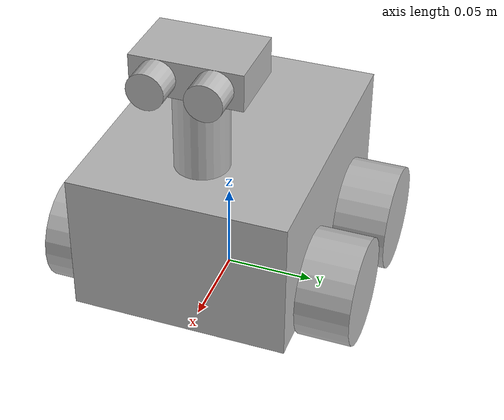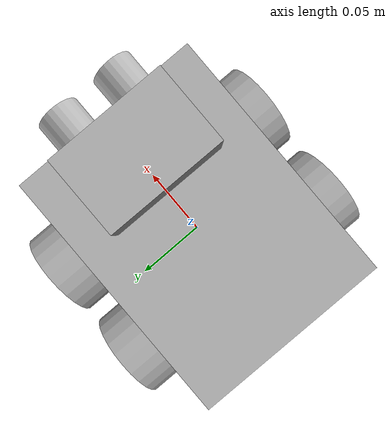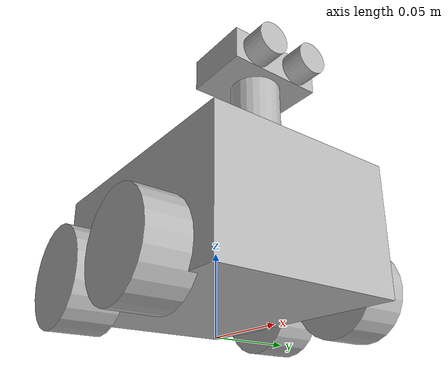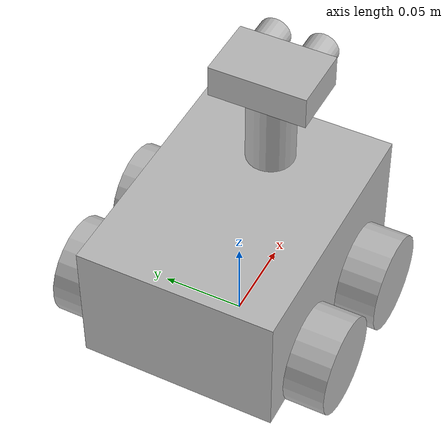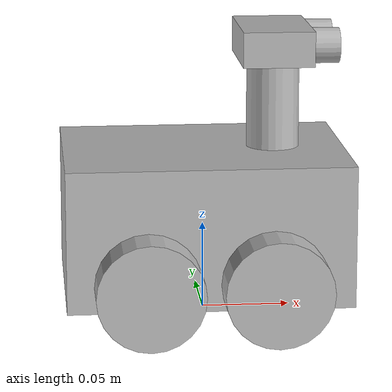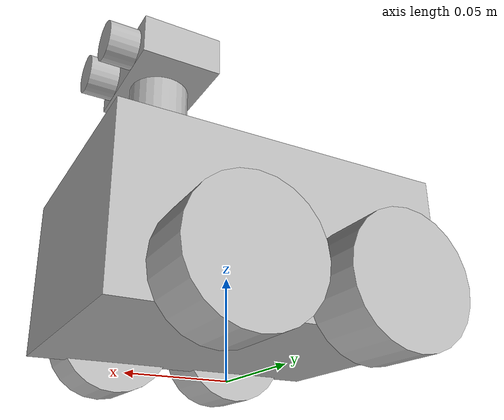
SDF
<?xml version="1.0"?>
<sdf version="1.6">
  <model name="minimapper">

    <!-- Body of the MM -->
    <link name="body">

      <pose>0 0 0.055 0 0 0</pose>
      <inertial>
        <mass>0.6</mass>
        <inertia>
          <ixx>0.00104</ixx>
          <iyy>0.00160</iyy>
          <izz>0.00200</izz>
          <ixy>0</ixy>
          <iyz>0</iyz>
          <ixz>0</ixz>
        </inertia>
      </inertial>

      <collision name="body_collision">
        <geometry>
          <box><size>0.16 0.12 0.08</size></box>
        </geometry>
      </collision>

      <visual name="body_visual">
        <geometry>
          <box><size>0.16 0.12 0.08</size></box>
        </geometry>
      </visual>
    </link>

    <!-- Front Right Wheel of the MM and joint. -->
    <link name="wheel_fr">
      <pose>0.035 0.075 0.03 1.5708 0 0</pose>
      <inertial>
        <mass>0.5</mass>
        <inertia>
          <ixx>0.000150</ixx>
          <iyy>0.000150</iyy>
          <izz>0.000225</izz>
          <ixy>0</ixy>
          <iyz>0</iyz>
          <ixz>0</ixz>
        </inertia>
      </inertial>
      <collision name="wheel_fr_collision">
        <geometry>
          <cylinder>
            <radius>0.03</radius>
            <length>0.03</length>
          </cylinder>
        </geometry>
      </collision>
      <visual name="wheel_fr_visual">
        <geometry>
          <cylinder>
            <radius>0.03</radius>
            <length>0.03</length>
          </cylinder>
        </geometry>
      </visual>
    </link>

    <joint name="wheel_fr_joint" type="revolute">
      <parent>body</parent>
      <child>wheel_fr</child>
      <axis>
        <xyz>0 0 1</xyz>
        <use_parent_model_frame>0</use_parent_model_frame>
      </axis>
    </joint>

    <!-- Front Left Wheel of the MM and joint. -->
    <link name="wheel_fl">
      <pose>0.035 -0.07 0.03 1.5708 0 0</pose>
      <inertial>
        <mass>0.5</mass>
        <inertia>
          <ixx>0.000150</ixx>
          <iyy>0.000150</iyy>
          <izz>0.000225</izz>
          <ixy>0</ixy>
          <iyz>0</iyz>
          <ixz>0</ixz>
        </inertia>
      </inertial>
      <collision name="wheel_fl_collision">
        <geometry>
          <cylinder>
            <radius>0.03</radius>
            <length>0.03</length>
          </cylinder>
        </geometry>
      </collision>
      <visual name="wheel_fl_visual">
        <geometry>
          <cylinder>
            <radius>0.03</radius>
            <length>0.03</length>
          </cylinder>
        </geometry>
      </visual>
    </link>

    <joint name="wheel_fl_joint" type="revolute">
      <parent>body</parent>
      <child>wheel_fl</child>
      <axis>
        <xyz>0 0 1</xyz>
        <use_parent_model_frame>0</use_parent_model_frame>
      </axis>
    </joint>

    <!-- Rear Right Wheel of the MM and joint. -->
    <link name="wheel_rr">
      <pose>-0.035 0.075 0.03 1.5708 0 0</pose>
      <inertial>
        <mass>0.5</mass>
        <inertia>
          <ixx>0.000150</ixx>
          <iyy>0.000150</iyy>
          <izz>0.000225</izz>
          <ixy>0</ixy>
          <iyz>0</iyz>
          <ixz>0</ixz>
        </inertia>
      </inertial>
      <collision name="wheel_rr_collision">
        <geometry>
          <cylinder>
            <radius>0.03</radius>
            <length>0.03</length>
          </cylinder>
        </geometry>
      </collision>
      <visual name="wheel_rr_visual">
        <geometry>
          <cylinder>
            <radius>0.03</radius>
            <length>0.03</length>
          </cylinder>
        </geometry>
      </visual>
    </link>

    <joint name="wheel_rr_joint" type="revolute">
      <parent>body</parent>
      <child>wheel_rr</child>
      <axis>
        <xyz>0 0 1</xyz>
        <use_parent_model_frame>0</use_parent_model_frame>
      </axis>
    </joint>

    <!-- Rear Left Wheel of the MM and joint. -->
    <link name="wheel_rl">
      <pose>-0.035 -0.07 0.03 1.5708 0 0</pose>
      <inertial>
        <mass>0.5</mass>
        <inertia>
          <ixx>0.000150</ixx>
          <iyy>0.000150</iyy>
          <izz>0.000225</izz>
          <ixy>0</ixy>
          <iyz>0</iyz>
          <ixz>0</ixz>
        </inertia>
      </inertial>
      <collision name="wheel_rl_collision">
        <geometry>
          <cylinder>
            <radius>0.03</radius>
            <length>0.03</length>
          </cylinder>
        </geometry>
      </collision>
      <visual name="wheel_rl_visual">
        <geometry>
          <cylinder>
            <radius>0.03</radius>
            <length>0.03</length>
          </cylinder>
        </geometry>
      </visual>
    </link>

    <joint name="wheel_rl_joint" type="revolute">
      <parent>body</parent>
      <child>wheel_rl</child>
      <axis>
        <xyz>0 0 1</xyz>
        <use_parent_model_frame>0</use_parent_model_frame>
      </axis>
    </joint>

  <!-- Ultrasonic Radar -->
  <include>
    <uri>model://sonar</uri>
    <pose>0.04 0 0.095 0 0 0</pose>
    <plugin name="sonar_control" filename="sonar.so">
      <velocity>0.5</velocity>
      <pid>
        <p>0.005</p>
        <i>0</i>
        <d>0</d>
      </pid>
    </plugin>
  </include>

  <joint name="sonar_joint" type="fixed">
    <pose>0.04 0 0.095 0 0 0</pose>
    <parent>body</parent>
    <child>sonar::shaft</child>
  </joint>

  </model>
</sdf>

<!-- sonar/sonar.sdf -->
<sdf version="1.6">
  <model name="sonar">

    <!-- The Shaft of the Sonar. -->
    <link name="shaft">

      <pose>0 0 0.025 0 0 0</pose>
      <inertial>
        <mass>0.1</mass>
        <inertia>
          <ixx>0.00002646</ixx>
          <iyy>0.00002646</iyy>
          <izz>0.00001125</izz>
          <ixy>0</ixy>
          <iyz>0</iyz>
          <ixz>0</ixz>
        </inertia>
      </inertial>

      <collision name="shaft_collision">
        <geometry>
          <cylinder>
            <radius>0.015</radius>
            <length>0.050</length>
          </cylinder>
        </geometry>
      </collision>

      <visual name="shaft_visual">
        <geometry>
          <cylinder>
            <radius>0.015</radius>
            <length>0.050</length>
          </cylinder>
        </geometry>
      </visual>
    </link>

    <!-- The Head of the Sonar. -->
    <link name="head">

      <pose>0 0 0.060 0 0 0</pose>
      <inertial>
        <mass>0.1</mass>
        <inertia>
          <ixx>0.00003333</ixx>
          <iyy>0.00001667</iyy>
          <izz>0.00004333</izz>
          <ixy>0</ixy>
          <iyz>0</iyz>
          <ixz>0</ixz>
        </inertia>
      </inertial>

      <collision name="head_collision">
        <geometry>
          <box><size>0.04 0.06 0.02</size></box>
        </geometry>
      </collision>

      <visual name="head_visual">
        <geometry>
          <box><size>0.04 0.06 0.02</size></box>
        </geometry>
      </visual>
    </link>

    <!-- Joint -->
    <joint name="neck_joint" type="revolute">

      <pose>0 0 -0.01 0 0 0</pose>
      <parent>shaft</parent>
      <child>head</child>

      <axis>
        <xyz>0 0 1</xyz>
        <initial_position>-1.3091</initial_position>
        <limit>
          <lower>-1.309</lower>
          <upper>1.309</upper>
        </limit>
      </axis>
    </joint>

    <!-- Left Eye. The reciever for US sensor is on this eye. -->
    <link name="eye_left">

      <pose>0.0275 0.015 0.06 0 1.5708 3.1416</pose>
      <inertial>
        <mass>0.05</mass>
        <inertia>
          <ixx>0.00000219</ixx>
          <iyy>0.00000219</iyy>
          <izz>0.00000250</izz>
          <ixy>0</ixy>
          <iyz>0</iyz>
          <ixz>0</ixz>
        </inertia>
      </inertial>

      <collision name="eye_left_collision">
        <geometry>
          <cylinder>
            <radius>0.010</radius>
            <length>0.015</length>
          </cylinder>
        </geometry>
      </collision>

      <visual name="eye_left_visual">
        <geometry>
          <cylinder>
            <radius>0.010</radius>
            <length>0.015</length>
          </cylinder>
        </geometry>
      </visual>

      <!-- The actual ultrasonic sensor -->
      <sensor name="sonar_sensor" type="ray">
        <pose>0 0 0 0 1.5708 0</pose>
        <always_on>1</always_on>
        <update_rate>100</update_rate>
        <visualize>1</visualize>

        <ray>
          <scan>
            <horizontal>
              <samples>64</samples>
              <resolution>1</resolution>
              <min_angle>-0.261799</min_angle>
              <max_angle>0.261799</max_angle>
            </horizontal>
          </scan>

          <range>
            <min>0.02</min>
            <max>5.00</max>
            <resolution>0.02</resolution>
          </range>
        </ray>

      </sensor>
    </link>

    <!-- Fix the Eye to the Sonar Head. -->
    <joint name="eye_left_joint" type="fixed">
      <parent>head</parent>
      <child>eye_left</child>
    </joint>

    <!-- Right Eye -->
    <link name="eye_right">

      <pose>0.0275 -0.015 0.06 0 1.5708 0</pose>
      <inertial>
        <mass>0.05</mass>
        <inertia>
          <ixx>0.00000219</ixx>
          <iyy>0.00000219</iyy>
          <izz>0.00000250</izz>
          <ixy>0</ixy>
          <iyz>0</iyz>
          <ixz>0</ixz>
        </inertia>
      </inertial>
      <collision name="eye_right_collision">
        <geometry>
          <cylinder>
            <radius>0.010</radius>
            <length>0.015</length>
          </cylinder>
        </geometry>
      </collision>
      <visual name="eye_right_visual">
        <geometry>
          <cylinder>
            <radius>0.010</radius>
            <length>0.015</length>
          </cylinder>
        </geometry>
      </visual>
    </link>

    <!-- Fix the Eye to the Sonar Head. -->
    <joint name="eye_right_joint" type="fixed">
      <parent>head</parent>
      <child>eye_right</child>
    </joint>

    <!-- Plugin to Control Head Movement. -->

  </model>
</sdf>
